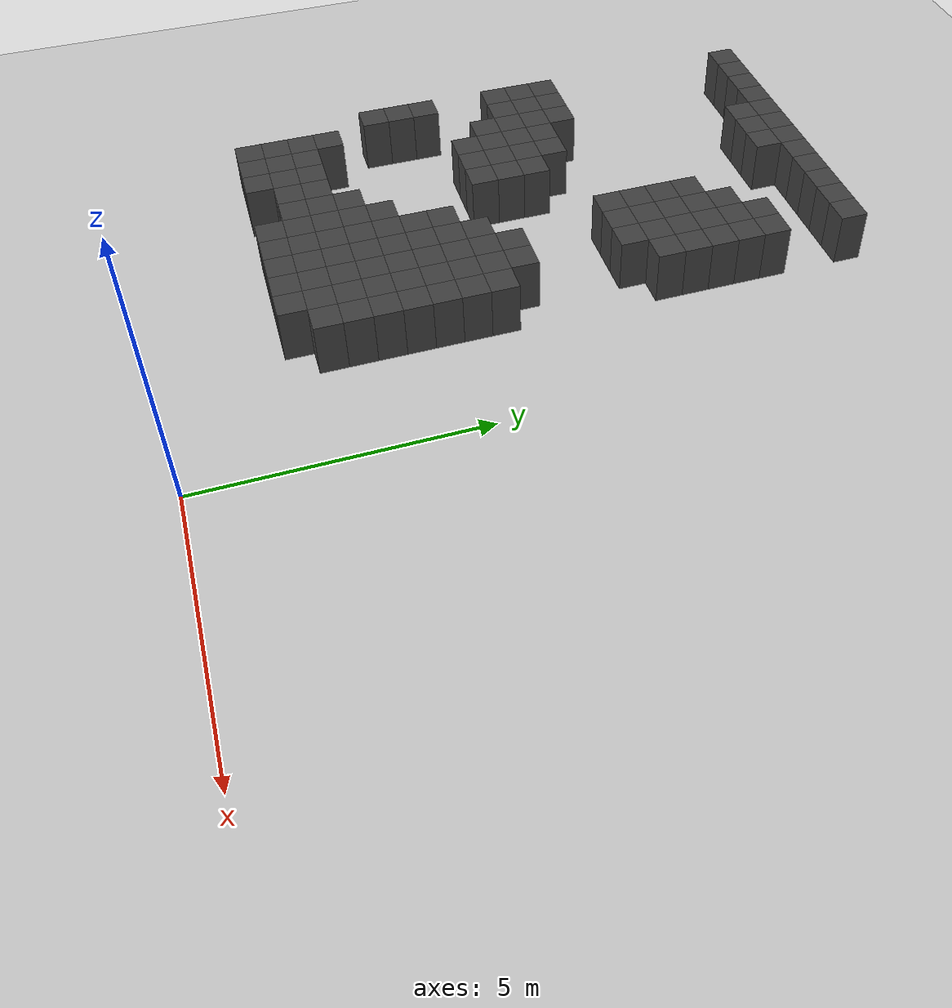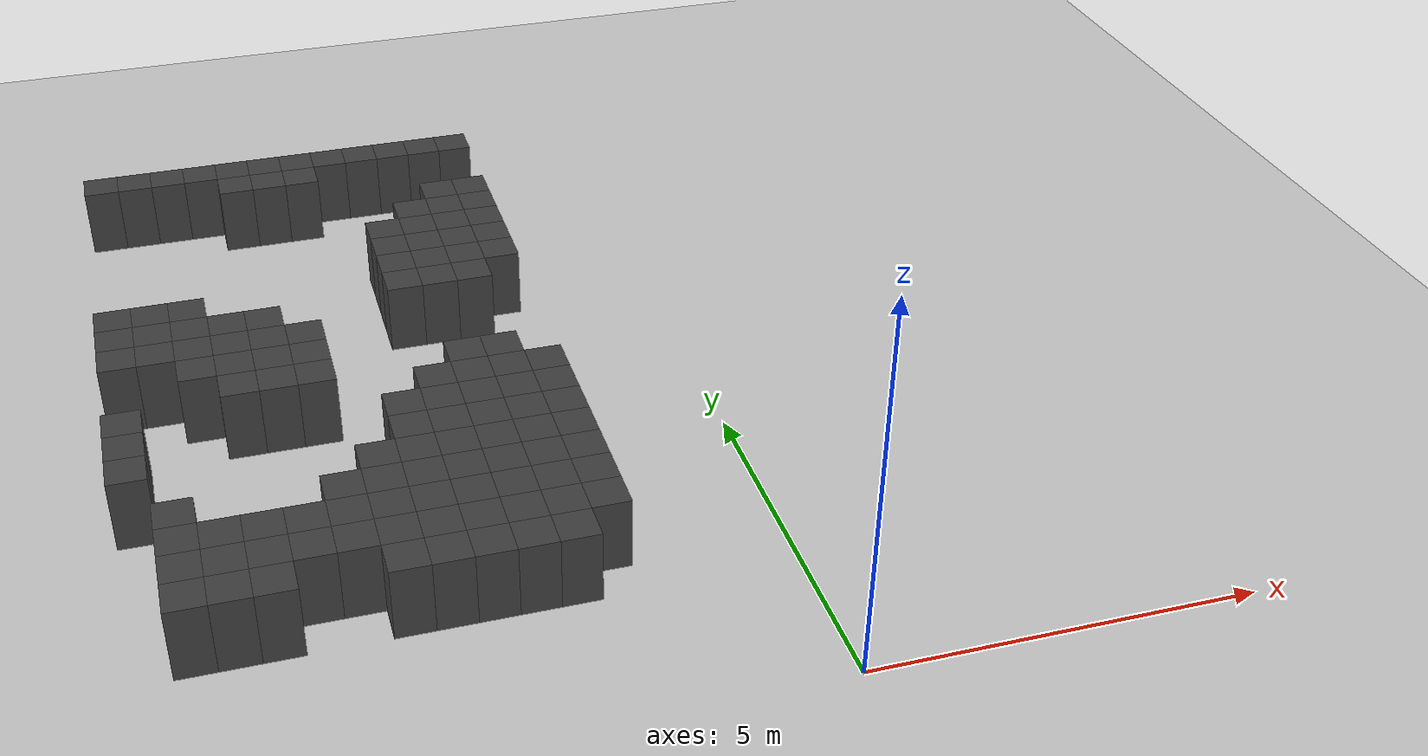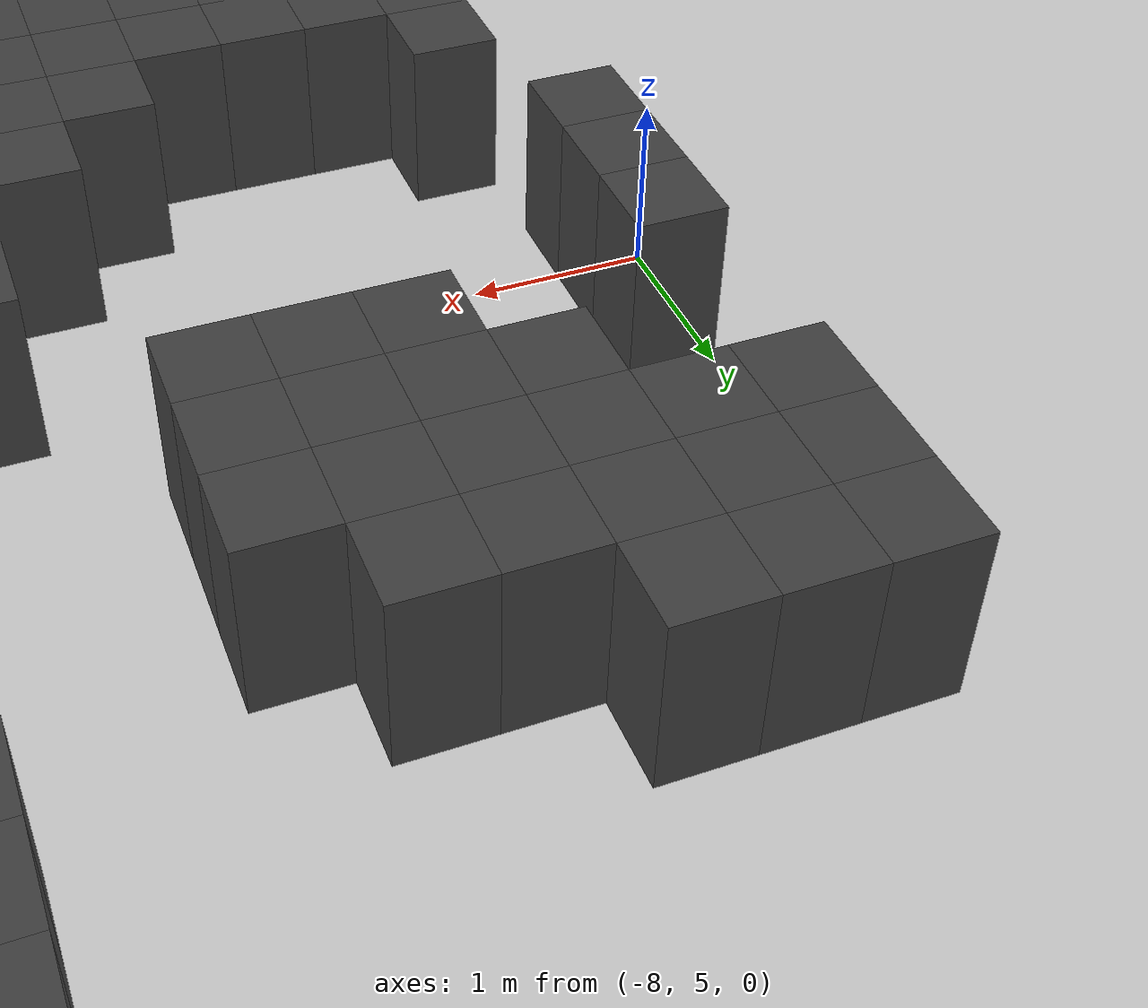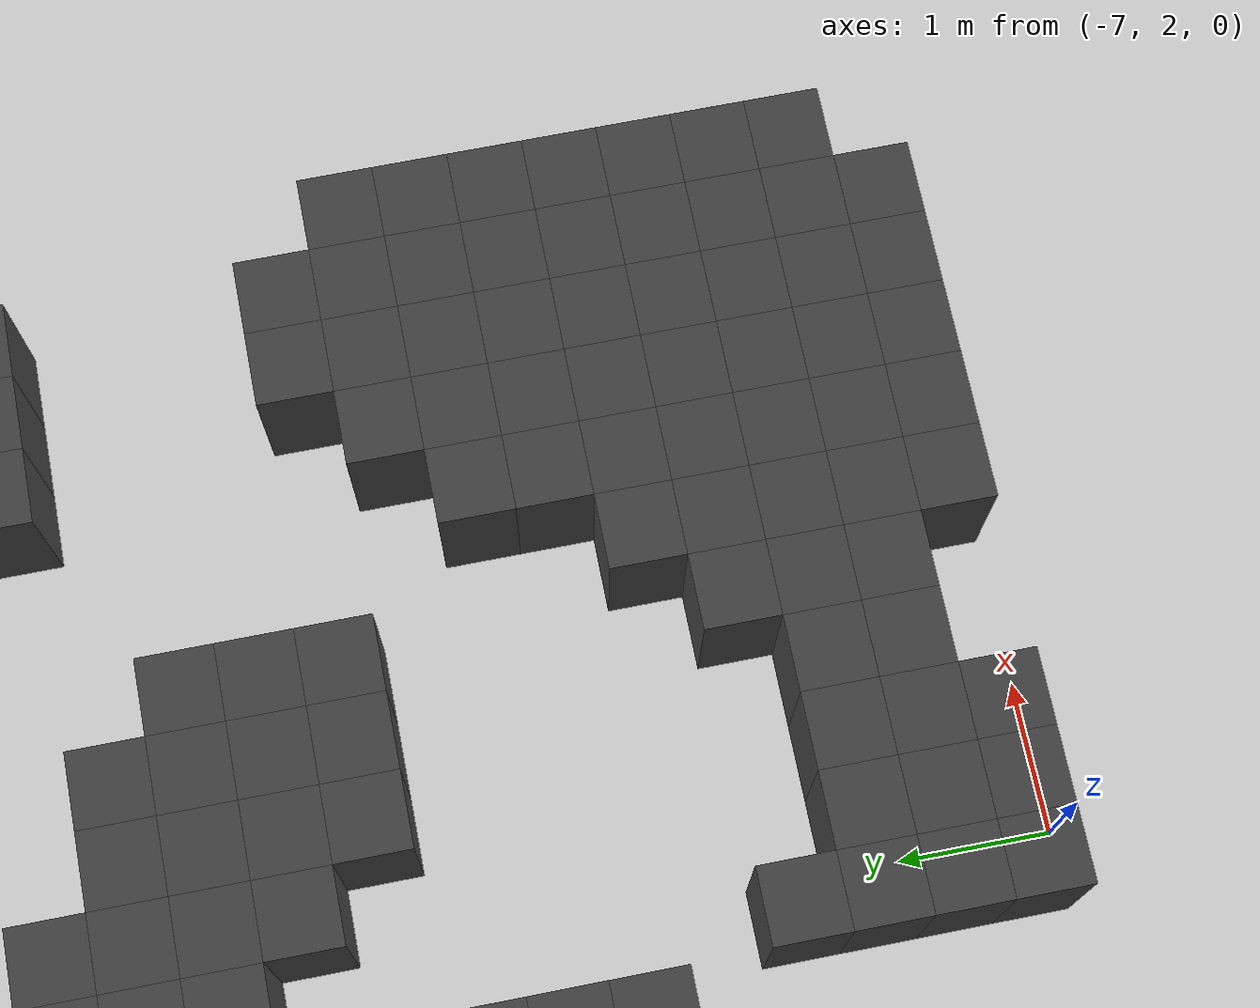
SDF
<sdf version="1.7">
 <world name="map_9705">
  <model name="ground_plane">
   <static>true</static>
   <link name="link">
    <collision name="collision">
     <geometry><plane><normal>0 0 1</normal><size>200 200</size></plane></geometry>
    </collision>
    <visual name="visual">
     <geometry><plane><normal>0 0 1</normal><size>200 200</size></plane></geometry>
     <material><ambient>0.8 0.8 0.8 1</ambient><diffuse>0.8 0.8 0.8 1</diffuse></material>
    </visual>
   </link>
  </model>
  <model name="maze_environment">
   <static>true</static>
   <link name="wall_9">
    <pose>-7.750 12.250 0.500 0 0 0</pose>
    <collision name="col"><geometry><box><size>0.5 0.5 1.0</size></box></geometry></collision>
    <visual name="vis">
     <geometry><box><size>0.5 0.5 1.0</size></box></geometry>
     <material><ambient>0.15 0.15 0.15 1</ambient><diffuse>0.25 0.25 0.25 1</diffuse></material>
    </visual>
   </link>
   <link name="wall_10">
    <pose>-7.250 12.250 0.500 0 0 0</pose>
    <collision name="col"><geometry><box><size>0.5 0.5 1.0</size></box></geometry></collision>
    <visual name="vis">
     <geometry><box><size>0.5 0.5 1.0</size></box></geometry>
     <material><ambient>0.15 0.15 0.15 1</ambient><diffuse>0.25 0.25 0.25 1</diffuse></material>
    </visual>
   </link>
   <link name="wall_11">
    <pose>-6.750 12.250 0.500 0 0 0</pose>
    <collision name="col"><geometry><box><size>0.5 0.5 1.0</size></box></geometry></collision>
    <visual name="vis">
     <geometry><box><size>0.5 0.5 1.0</size></box></geometry>
     <material><ambient>0.15 0.15 0.15 1</ambient><diffuse>0.25 0.25 0.25 1</diffuse></material>
    </visual>
   </link>
   <link name="wall_12">
    <pose>-6.250 12.250 0.500 0 0 0</pose>
    <collision name="col"><geometry><box><size>0.5 0.5 1.0</size></box></geometry></collision>
    <visual name="vis">
     <geometry><box><size>0.5 0.5 1.0</size></box></geometry>
     <material><ambient>0.15 0.15 0.15 1</ambient><diffuse>0.25 0.25 0.25 1</diffuse></material>
    </visual>
   </link>
   <link name="wall_13">
    <pose>-5.750 12.250 0.500 0 0 0</pose>
    <collision name="col"><geometry><box><size>0.5 0.5 1.0</size></box></geometry></collision>
    <visual name="vis">
     <geometry><box><size>0.5 0.5 1.0</size></box></geometry>
     <material><ambient>0.15 0.15 0.15 1</ambient><diffuse>0.25 0.25 0.25 1</diffuse></material>
    </visual>
   </link>
   <link name="wall_14">
    <pose>-5.250 12.250 0.500 0 0 0</pose>
    <collision name="col"><geometry><box><size>0.5 0.5 1.0</size></box></geometry></collision>
    <visual name="vis">
     <geometry><box><size>0.5 0.5 1.0</size></box></geometry>
     <material><ambient>0.15 0.15 0.15 1</ambient><diffuse>0.25 0.25 0.25 1</diffuse></material>
    </visual>
   </link>
   <link name="wall_15">
    <pose>-4.750 12.250 0.500 0 0 0</pose>
    <collision name="col"><geometry><box><size>0.5 0.5 1.0</size></box></geometry></collision>
    <visual name="vis">
     <geometry><box><size>0.5 0.5 1.0</size></box></geometry>
     <material><ambient>0.15 0.15 0.15 1</ambient><diffuse>0.25 0.25 0.25 1</diffuse></material>
    </visual>
   </link>
   <link name="wall_16">
    <pose>-4.250 12.250 0.500 0 0 0</pose>
    <collision name="col"><geometry><box><size>0.5 0.5 1.0</size></box></geometry></collision>
    <visual name="vis">
     <geometry><box><size>0.5 0.5 1.0</size></box></geometry>
     <material><ambient>0.15 0.15 0.15 1</ambient><diffuse>0.25 0.25 0.25 1</diffuse></material>
    </visual>
   </link>
   <link name="wall_17">
    <pose>-3.750 12.250 0.500 0 0 0</pose>
    <collision name="col"><geometry><box><size>0.5 0.5 1.0</size></box></geometry></collision>
    <visual name="vis">
     <geometry><box><size>0.5 0.5 1.0</size></box></geometry>
     <material><ambient>0.15 0.15 0.15 1</ambient><diffuse>0.25 0.25 0.25 1</diffuse></material>
    </visual>
   </link>
   <link name="wall_18">
    <pose>-3.250 12.250 0.500 0 0 0</pose>
    <collision name="col"><geometry><box><size>0.5 0.5 1.0</size></box></geometry></collision>
    <visual name="vis">
     <geometry><box><size>0.5 0.5 1.0</size></box></geometry>
     <material><ambient>0.15 0.15 0.15 1</ambient><diffuse>0.25 0.25 0.25 1</diffuse></material>
    </visual>
   </link>
   <link name="wall_19">
    <pose>-2.750 12.250 0.500 0 0 0</pose>
    <collision name="col"><geometry><box><size>0.5 0.5 1.0</size></box></geometry></collision>
    <visual name="vis">
     <geometry><box><size>0.5 0.5 1.0</size></box></geometry>
     <material><ambient>0.15 0.15 0.15 1</ambient><diffuse>0.25 0.25 0.25 1</diffuse></material>
    </visual>
   </link>
   <link name="wall_20">
    <pose>-2.250 12.250 0.500 0 0 0</pose>
    <collision name="col"><geometry><box><size>0.5 0.5 1.0</size></box></geometry></collision>
    <visual name="vis">
     <geometry><box><size>0.5 0.5 1.0</size></box></geometry>
     <material><ambient>0.15 0.15 0.15 1</ambient><diffuse>0.25 0.25 0.25 1</diffuse></material>
    </visual>
   </link>
   <link name="wall_57">
    <pose>-5.750 11.750 0.500 0 0 0</pose>
    <collision name="col"><geometry><box><size>0.5 0.5 1.0</size></box></geometry></collision>
    <visual name="vis">
     <geometry><box><size>0.5 0.5 1.0</size></box></geometry>
     <material><ambient>0.15 0.15 0.15 1</ambient><diffuse>0.25 0.25 0.25 1</diffuse></material>
    </visual>
   </link>
   <link name="wall_58">
    <pose>-5.250 11.750 0.500 0 0 0</pose>
    <collision name="col"><geometry><box><size>0.5 0.5 1.0</size></box></geometry></collision>
    <visual name="vis">
     <geometry><box><size>0.5 0.5 1.0</size></box></geometry>
     <material><ambient>0.15 0.15 0.15 1</ambient><diffuse>0.25 0.25 0.25 1</diffuse></material>
    </visual>
   </link>
   <link name="wall_59">
    <pose>-4.750 11.750 0.500 0 0 0</pose>
    <collision name="col"><geometry><box><size>0.5 0.5 1.0</size></box></geometry></collision>
    <visual name="vis">
     <geometry><box><size>0.5 0.5 1.0</size></box></geometry>
     <material><ambient>0.15 0.15 0.15 1</ambient><diffuse>0.25 0.25 0.25 1</diffuse></material>
    </visual>
   </link>
   <link name="wall_102">
    <pose>-2.750 10.750 0.500 0 0 0</pose>
    <collision name="col"><geometry><box><size>0.5 0.5 1.0</size></box></geometry></collision>
    <visual name="vis">
     <geometry><box><size>0.5 0.5 1.0</size></box></geometry>
     <material><ambient>0.15 0.15 0.15 1</ambient><diffuse>0.25 0.25 0.25 1</diffuse></material>
    </visual>
   </link>
   <link name="wall_103">
    <pose>-2.250 10.750 0.500 0 0 0</pose>
    <collision name="col"><geometry><box><size>0.5 0.5 1.0</size></box></geometry></collision>
    <visual name="vis">
     <geometry><box><size>0.5 0.5 1.0</size></box></geometry>
     <material><ambient>0.15 0.15 0.15 1</ambient><diffuse>0.25 0.25 0.25 1</diffuse></material>
    </visual>
   </link>
   <link name="wall_118">
    <pose>-3.250 10.250 0.500 0 0 0</pose>
    <collision name="col"><geometry><box><size>0.5 0.5 1.0</size></box></geometry></collision>
    <visual name="vis">
     <geometry><box><size>0.5 0.5 1.0</size></box></geometry>
     <material><ambient>0.15 0.15 0.15 1</ambient><diffuse>0.25 0.25 0.25 1</diffuse></material>
    </visual>
   </link>
   <link name="wall_119">
    <pose>-2.750 10.250 0.500 0 0 0</pose>
    <collision name="col"><geometry><box><size>0.5 0.5 1.0</size></box></geometry></collision>
    <visual name="vis">
     <geometry><box><size>0.5 0.5 1.0</size></box></geometry>
     <material><ambient>0.15 0.15 0.15 1</ambient><diffuse>0.25 0.25 0.25 1</diffuse></material>
    </visual>
   </link>
   <link name="wall_120">
    <pose>-2.250 10.250 0.500 0 0 0</pose>
    <collision name="col"><geometry><box><size>0.5 0.5 1.0</size></box></geometry></collision>
    <visual name="vis">
     <geometry><box><size>0.5 0.5 1.0</size></box></geometry>
     <material><ambient>0.15 0.15 0.15 1</ambient><diffuse>0.25 0.25 0.25 1</diffuse></material>
    </visual>
   </link>
   <link name="wall_137">
    <pose>-3.750 9.750 0.500 0 0 0</pose>
    <collision name="col"><geometry><box><size>0.5 0.5 1.0</size></box></geometry></collision>
    <visual name="vis">
     <geometry><box><size>0.5 0.5 1.0</size></box></geometry>
     <material><ambient>0.15 0.15 0.15 1</ambient><diffuse>0.25 0.25 0.25 1</diffuse></material>
    </visual>
   </link>
   <link name="wall_138">
    <pose>-3.250 9.750 0.500 0 0 0</pose>
    <collision name="col"><geometry><box><size>0.5 0.5 1.0</size></box></geometry></collision>
    <visual name="vis">
     <geometry><box><size>0.5 0.5 1.0</size></box></geometry>
     <material><ambient>0.15 0.15 0.15 1</ambient><diffuse>0.25 0.25 0.25 1</diffuse></material>
    </visual>
   </link>
   <link name="wall_139">
    <pose>-2.750 9.750 0.500 0 0 0</pose>
    <collision name="col"><geometry><box><size>0.5 0.5 1.0</size></box></geometry></collision>
    <visual name="vis">
     <geometry><box><size>0.5 0.5 1.0</size></box></geometry>
     <material><ambient>0.15 0.15 0.15 1</ambient><diffuse>0.25 0.25 0.25 1</diffuse></material>
    </visual>
   </link>
   <link name="wall_140">
    <pose>-2.250 9.750 0.500 0 0 0</pose>
    <collision name="col"><geometry><box><size>0.5 0.5 1.0</size></box></geometry></collision>
    <visual name="vis">
     <geometry><box><size>0.5 0.5 1.0</size></box></geometry>
     <material><ambient>0.15 0.15 0.15 1</ambient><diffuse>0.25 0.25 0.25 1</diffuse></material>
    </visual>
   </link>
   <link name="wall_160">
    <pose>-3.750 9.250 0.500 0 0 0</pose>
    <collision name="col"><geometry><box><size>0.5 0.5 1.0</size></box></geometry></collision>
    <visual name="vis">
     <geometry><box><size>0.5 0.5 1.0</size></box></geometry>
     <material><ambient>0.15 0.15 0.15 1</ambient><diffuse>0.25 0.25 0.25 1</diffuse></material>
    </visual>
   </link>
   <link name="wall_161">
    <pose>-3.250 9.250 0.500 0 0 0</pose>
    <collision name="col"><geometry><box><size>0.5 0.5 1.0</size></box></geometry></collision>
    <visual name="vis">
     <geometry><box><size>0.5 0.5 1.0</size></box></geometry>
     <material><ambient>0.15 0.15 0.15 1</ambient><diffuse>0.25 0.25 0.25 1</diffuse></material>
    </visual>
   </link>
   <link name="wall_162">
    <pose>-2.750 9.250 0.500 0 0 0</pose>
    <collision name="col"><geometry><box><size>0.5 0.5 1.0</size></box></geometry></collision>
    <visual name="vis">
     <geometry><box><size>0.5 0.5 1.0</size></box></geometry>
     <material><ambient>0.15 0.15 0.15 1</ambient><diffuse>0.25 0.25 0.25 1</diffuse></material>
    </visual>
   </link>
   <link name="wall_163">
    <pose>-2.250 9.250 0.500 0 0 0</pose>
    <collision name="col"><geometry><box><size>0.5 0.5 1.0</size></box></geometry></collision>
    <visual name="vis">
     <geometry><box><size>0.5 0.5 1.0</size></box></geometry>
     <material><ambient>0.15 0.15 0.15 1</ambient><diffuse>0.25 0.25 0.25 1</diffuse></material>
    </visual>
   </link>
   <link name="wall_183">
    <pose>-3.750 8.750 0.500 0 0 0</pose>
    <collision name="col"><geometry><box><size>0.5 0.5 1.0</size></box></geometry></collision>
    <visual name="vis">
     <geometry><box><size>0.5 0.5 1.0</size></box></geometry>
     <material><ambient>0.15 0.15 0.15 1</ambient><diffuse>0.25 0.25 0.25 1</diffuse></material>
    </visual>
   </link>
   <link name="wall_184">
    <pose>-3.250 8.750 0.500 0 0 0</pose>
    <collision name="col"><geometry><box><size>0.5 0.5 1.0</size></box></geometry></collision>
    <visual name="vis">
     <geometry><box><size>0.5 0.5 1.0</size></box></geometry>
     <material><ambient>0.15 0.15 0.15 1</ambient><diffuse>0.25 0.25 0.25 1</diffuse></material>
    </visual>
   </link>
   <link name="wall_185">
    <pose>-2.750 8.750 0.500 0 0 0</pose>
    <collision name="col"><geometry><box><size>0.5 0.5 1.0</size></box></geometry></collision>
    <visual name="vis">
     <geometry><box><size>0.5 0.5 1.0</size></box></geometry>
     <material><ambient>0.15 0.15 0.15 1</ambient><diffuse>0.25 0.25 0.25 1</diffuse></material>
    </visual>
   </link>
   <link name="wall_186">
    <pose>-2.250 8.750 0.500 0 0 0</pose>
    <collision name="col"><geometry><box><size>0.5 0.5 1.0</size></box></geometry></collision>
    <visual name="vis">
     <geometry><box><size>0.5 0.5 1.0</size></box></geometry>
     <material><ambient>0.15 0.15 0.15 1</ambient><diffuse>0.25 0.25 0.25 1</diffuse></material>
    </visual>
   </link>
   <link name="wall_199">
    <pose>-7.750 8.250 0.500 0 0 0</pose>
    <collision name="col"><geometry><box><size>0.5 0.5 1.0</size></box></geometry></collision>
    <visual name="vis">
     <geometry><box><size>0.5 0.5 1.0</size></box></geometry>
     <material><ambient>0.15 0.15 0.15 1</ambient><diffuse>0.25 0.25 0.25 1</diffuse></material>
    </visual>
   </link>
   <link name="wall_200">
    <pose>-7.250 8.250 0.500 0 0 0</pose>
    <collision name="col"><geometry><box><size>0.5 0.5 1.0</size></box></geometry></collision>
    <visual name="vis">
     <geometry><box><size>0.5 0.5 1.0</size></box></geometry>
     <material><ambient>0.15 0.15 0.15 1</ambient><diffuse>0.25 0.25 0.25 1</diffuse></material>
    </visual>
   </link>
   <link name="wall_201">
    <pose>-6.750 8.250 0.500 0 0 0</pose>
    <collision name="col"><geometry><box><size>0.5 0.5 1.0</size></box></geometry></collision>
    <visual name="vis">
     <geometry><box><size>0.5 0.5 1.0</size></box></geometry>
     <material><ambient>0.15 0.15 0.15 1</ambient><diffuse>0.25 0.25 0.25 1</diffuse></material>
    </visual>
   </link>
   <link name="wall_202">
    <pose>-3.750 8.250 0.500 0 0 0</pose>
    <collision name="col"><geometry><box><size>0.5 0.5 1.0</size></box></geometry></collision>
    <visual name="vis">
     <geometry><box><size>0.5 0.5 1.0</size></box></geometry>
     <material><ambient>0.15 0.15 0.15 1</ambient><diffuse>0.25 0.25 0.25 1</diffuse></material>
    </visual>
   </link>
   <link name="wall_203">
    <pose>-3.250 8.250 0.500 0 0 0</pose>
    <collision name="col"><geometry><box><size>0.5 0.5 1.0</size></box></geometry></collision>
    <visual name="vis">
     <geometry><box><size>0.5 0.5 1.0</size></box></geometry>
     <material><ambient>0.15 0.15 0.15 1</ambient><diffuse>0.25 0.25 0.25 1</diffuse></material>
    </visual>
   </link>
   <link name="wall_204">
    <pose>-2.750 8.250 0.500 0 0 0</pose>
    <collision name="col"><geometry><box><size>0.5 0.5 1.0</size></box></geometry></collision>
    <visual name="vis">
     <geometry><box><size>0.5 0.5 1.0</size></box></geometry>
     <material><ambient>0.15 0.15 0.15 1</ambient><diffuse>0.25 0.25 0.25 1</diffuse></material>
    </visual>
   </link>
   <link name="wall_212">
    <pose>-7.750 7.750 0.500 0 0 0</pose>
    <collision name="col"><geometry><box><size>0.5 0.5 1.0</size></box></geometry></collision>
    <visual name="vis">
     <geometry><box><size>0.5 0.5 1.0</size></box></geometry>
     <material><ambient>0.15 0.15 0.15 1</ambient><diffuse>0.25 0.25 0.25 1</diffuse></material>
    </visual>
   </link>
   <link name="wall_213">
    <pose>-7.250 7.750 0.500 0 0 0</pose>
    <collision name="col"><geometry><box><size>0.5 0.5 1.0</size></box></geometry></collision>
    <visual name="vis">
     <geometry><box><size>0.5 0.5 1.0</size></box></geometry>
     <material><ambient>0.15 0.15 0.15 1</ambient><diffuse>0.25 0.25 0.25 1</diffuse></material>
    </visual>
   </link>
   <link name="wall_214">
    <pose>-6.750 7.750 0.500 0 0 0</pose>
    <collision name="col"><geometry><box><size>0.5 0.5 1.0</size></box></geometry></collision>
    <visual name="vis">
     <geometry><box><size>0.5 0.5 1.0</size></box></geometry>
     <material><ambient>0.15 0.15 0.15 1</ambient><diffuse>0.25 0.25 0.25 1</diffuse></material>
    </visual>
   </link>
   <link name="wall_215">
    <pose>-6.250 7.750 0.500 0 0 0</pose>
    <collision name="col"><geometry><box><size>0.5 0.5 1.0</size></box></geometry></collision>
    <visual name="vis">
     <geometry><box><size>0.5 0.5 1.0</size></box></geometry>
     <material><ambient>0.15 0.15 0.15 1</ambient><diffuse>0.25 0.25 0.25 1</diffuse></material>
    </visual>
   </link>
   <link name="wall_216">
    <pose>-5.750 7.750 0.500 0 0 0</pose>
    <collision name="col"><geometry><box><size>0.5 0.5 1.0</size></box></geometry></collision>
    <visual name="vis">
     <geometry><box><size>0.5 0.5 1.0</size></box></geometry>
     <material><ambient>0.15 0.15 0.15 1</ambient><diffuse>0.25 0.25 0.25 1</diffuse></material>
    </visual>
   </link>
   <link name="wall_223">
    <pose>-7.750 7.250 0.500 0 0 0</pose>
    <collision name="col"><geometry><box><size>0.5 0.5 1.0</size></box></geometry></collision>
    <visual name="vis">
     <geometry><box><size>0.5 0.5 1.0</size></box></geometry>
     <material><ambient>0.15 0.15 0.15 1</ambient><diffuse>0.25 0.25 0.25 1</diffuse></material>
    </visual>
   </link>
   <link name="wall_224">
    <pose>-7.250 7.250 0.500 0 0 0</pose>
    <collision name="col"><geometry><box><size>0.5 0.5 1.0</size></box></geometry></collision>
    <visual name="vis">
     <geometry><box><size>0.5 0.5 1.0</size></box></geometry>
     <material><ambient>0.15 0.15 0.15 1</ambient><diffuse>0.25 0.25 0.25 1</diffuse></material>
    </visual>
   </link>
   <link name="wall_225">
    <pose>-6.750 7.250 0.500 0 0 0</pose>
    <collision name="col"><geometry><box><size>0.5 0.5 1.0</size></box></geometry></collision>
    <visual name="vis">
     <geometry><box><size>0.5 0.5 1.0</size></box></geometry>
     <material><ambient>0.15 0.15 0.15 1</ambient><diffuse>0.25 0.25 0.25 1</diffuse></material>
    </visual>
   </link>
   <link name="wall_226">
    <pose>-6.250 7.250 0.500 0 0 0</pose>
    <collision name="col"><geometry><box><size>0.5 0.5 1.0</size></box></geometry></collision>
    <visual name="vis">
     <geometry><box><size>0.5 0.5 1.0</size></box></geometry>
     <material><ambient>0.15 0.15 0.15 1</ambient><diffuse>0.25 0.25 0.25 1</diffuse></material>
    </visual>
   </link>
   <link name="wall_227">
    <pose>-5.750 7.250 0.500 0 0 0</pose>
    <collision name="col"><geometry><box><size>0.5 0.5 1.0</size></box></geometry></collision>
    <visual name="vis">
     <geometry><box><size>0.5 0.5 1.0</size></box></geometry>
     <material><ambient>0.15 0.15 0.15 1</ambient><diffuse>0.25 0.25 0.25 1</diffuse></material>
    </visual>
   </link>
   <link name="wall_228">
    <pose>-5.250 7.250 0.500 0 0 0</pose>
    <collision name="col"><geometry><box><size>0.5 0.5 1.0</size></box></geometry></collision>
    <visual name="vis">
     <geometry><box><size>0.5 0.5 1.0</size></box></geometry>
     <material><ambient>0.15 0.15 0.15 1</ambient><diffuse>0.25 0.25 0.25 1</diffuse></material>
    </visual>
   </link>
   <link name="wall_237">
    <pose>-6.750 6.750 0.500 0 0 0</pose>
    <collision name="col"><geometry><box><size>0.5 0.5 1.0</size></box></geometry></collision>
    <visual name="vis">
     <geometry><box><size>0.5 0.5 1.0</size></box></geometry>
     <material><ambient>0.15 0.15 0.15 1</ambient><diffuse>0.25 0.25 0.25 1</diffuse></material>
    </visual>
   </link>
   <link name="wall_238">
    <pose>-6.250 6.750 0.500 0 0 0</pose>
    <collision name="col"><geometry><box><size>0.5 0.5 1.0</size></box></geometry></collision>
    <visual name="vis">
     <geometry><box><size>0.5 0.5 1.0</size></box></geometry>
     <material><ambient>0.15 0.15 0.15 1</ambient><diffuse>0.25 0.25 0.25 1</diffuse></material>
    </visual>
   </link>
   <link name="wall_239">
    <pose>-5.750 6.750 0.500 0 0 0</pose>
    <collision name="col"><geometry><box><size>0.5 0.5 1.0</size></box></geometry></collision>
    <visual name="vis">
     <geometry><box><size>0.5 0.5 1.0</size></box></geometry>
     <material><ambient>0.15 0.15 0.15 1</ambient><diffuse>0.25 0.25 0.25 1</diffuse></material>
    </visual>
   </link>
   <link name="wall_240">
    <pose>-5.250 6.750 0.500 0 0 0</pose>
    <collision name="col"><geometry><box><size>0.5 0.5 1.0</size></box></geometry></collision>
    <visual name="vis">
     <geometry><box><size>0.5 0.5 1.0</size></box></geometry>
     <material><ambient>0.15 0.15 0.15 1</ambient><diffuse>0.25 0.25 0.25 1</diffuse></material>
    </visual>
   </link>
   <link name="wall_261">
    <pose>-6.250 6.250 0.500 0 0 0</pose>
    <collision name="col"><geometry><box><size>0.5 0.5 1.0</size></box></geometry></collision>
    <visual name="vis">
     <geometry><box><size>0.5 0.5 1.0</size></box></geometry>
     <material><ambient>0.15 0.15 0.15 1</ambient><diffuse>0.25 0.25 0.25 1</diffuse></material>
    </visual>
   </link>
   <link name="wall_262">
    <pose>-5.750 6.250 0.500 0 0 0</pose>
    <collision name="col"><geometry><box><size>0.5 0.5 1.0</size></box></geometry></collision>
    <visual name="vis">
     <geometry><box><size>0.5 0.5 1.0</size></box></geometry>
     <material><ambient>0.15 0.15 0.15 1</ambient><diffuse>0.25 0.25 0.25 1</diffuse></material>
    </visual>
   </link>
   <link name="wall_263">
    <pose>-5.250 6.250 0.500 0 0 0</pose>
    <collision name="col"><geometry><box><size>0.5 0.5 1.0</size></box></geometry></collision>
    <visual name="vis">
     <geometry><box><size>0.5 0.5 1.0</size></box></geometry>
     <material><ambient>0.15 0.15 0.15 1</ambient><diffuse>0.25 0.25 0.25 1</diffuse></material>
    </visual>
   </link>
   <link name="wall_264">
    <pose>-3.250 6.250 0.500 0 0 0</pose>
    <collision name="col"><geometry><box><size>0.5 0.5 1.0</size></box></geometry></collision>
    <visual name="vis">
     <geometry><box><size>0.5 0.5 1.0</size></box></geometry>
     <material><ambient>0.15 0.15 0.15 1</ambient><diffuse>0.25 0.25 0.25 1</diffuse></material>
    </visual>
   </link>
   <link name="wall_265">
    <pose>-2.750 6.250 0.500 0 0 0</pose>
    <collision name="col"><geometry><box><size>0.5 0.5 1.0</size></box></geometry></collision>
    <visual name="vis">
     <geometry><box><size>0.5 0.5 1.0</size></box></geometry>
     <material><ambient>0.15 0.15 0.15 1</ambient><diffuse>0.25 0.25 0.25 1</diffuse></material>
    </visual>
   </link>
   <link name="wall_291">
    <pose>-7.750 5.750 0.500 0 0 0</pose>
    <collision name="col"><geometry><box><size>0.5 0.5 1.0</size></box></geometry></collision>
    <visual name="vis">
     <geometry><box><size>0.5 0.5 1.0</size></box></geometry>
     <material><ambient>0.15 0.15 0.15 1</ambient><diffuse>0.25 0.25 0.25 1</diffuse></material>
    </visual>
   </link>
   <link name="wall_292">
    <pose>-3.750 5.750 0.500 0 0 0</pose>
    <collision name="col"><geometry><box><size>0.5 0.5 1.0</size></box></geometry></collision>
    <visual name="vis">
     <geometry><box><size>0.5 0.5 1.0</size></box></geometry>
     <material><ambient>0.15 0.15 0.15 1</ambient><diffuse>0.25 0.25 0.25 1</diffuse></material>
    </visual>
   </link>
   <link name="wall_293">
    <pose>-3.250 5.750 0.500 0 0 0</pose>
    <collision name="col"><geometry><box><size>0.5 0.5 1.0</size></box></geometry></collision>
    <visual name="vis">
     <geometry><box><size>0.5 0.5 1.0</size></box></geometry>
     <material><ambient>0.15 0.15 0.15 1</ambient><diffuse>0.25 0.25 0.25 1</diffuse></material>
    </visual>
   </link>
   <link name="wall_294">
    <pose>-2.750 5.750 0.500 0 0 0</pose>
    <collision name="col"><geometry><box><size>0.5 0.5 1.0</size></box></geometry></collision>
    <visual name="vis">
     <geometry><box><size>0.5 0.5 1.0</size></box></geometry>
     <material><ambient>0.15 0.15 0.15 1</ambient><diffuse>0.25 0.25 0.25 1</diffuse></material>
    </visual>
   </link>
   <link name="wall_295">
    <pose>-2.250 5.750 0.500 0 0 0</pose>
    <collision name="col"><geometry><box><size>0.5 0.5 1.0</size></box></geometry></collision>
    <visual name="vis">
     <geometry><box><size>0.5 0.5 1.0</size></box></geometry>
     <material><ambient>0.15 0.15 0.15 1</ambient><diffuse>0.25 0.25 0.25 1</diffuse></material>
    </visual>
   </link>
   <link name="wall_323">
    <pose>-7.750 5.250 0.500 0 0 0</pose>
    <collision name="col"><geometry><box><size>0.5 0.5 1.0</size></box></geometry></collision>
    <visual name="vis">
     <geometry><box><size>0.5 0.5 1.0</size></box></geometry>
     <material><ambient>0.15 0.15 0.15 1</ambient><diffuse>0.25 0.25 0.25 1</diffuse></material>
    </visual>
   </link>
   <link name="wall_324">
    <pose>-4.250 5.250 0.500 0 0 0</pose>
    <collision name="col"><geometry><box><size>0.5 0.5 1.0</size></box></geometry></collision>
    <visual name="vis">
     <geometry><box><size>0.5 0.5 1.0</size></box></geometry>
     <material><ambient>0.15 0.15 0.15 1</ambient><diffuse>0.25 0.25 0.25 1</diffuse></material>
    </visual>
   </link>
   <link name="wall_325">
    <pose>-3.750 5.250 0.500 0 0 0</pose>
    <collision name="col"><geometry><box><size>0.5 0.5 1.0</size></box></geometry></collision>
    <visual name="vis">
     <geometry><box><size>0.5 0.5 1.0</size></box></geometry>
     <material><ambient>0.15 0.15 0.15 1</ambient><diffuse>0.25 0.25 0.25 1</diffuse></material>
    </visual>
   </link>
   <link name="wall_326">
    <pose>-3.250 5.250 0.500 0 0 0</pose>
    <collision name="col"><geometry><box><size>0.5 0.5 1.0</size></box></geometry></collision>
    <visual name="vis">
     <geometry><box><size>0.5 0.5 1.0</size></box></geometry>
     <material><ambient>0.15 0.15 0.15 1</ambient><diffuse>0.25 0.25 0.25 1</diffuse></material>
    </visual>
   </link>
   <link name="wall_327">
    <pose>-2.750 5.250 0.500 0 0 0</pose>
    <collision name="col"><geometry><box><size>0.5 0.5 1.0</size></box></geometry></collision>
    <visual name="vis">
     <geometry><box><size>0.5 0.5 1.0</size></box></geometry>
     <material><ambient>0.15 0.15 0.15 1</ambient><diffuse>0.25 0.25 0.25 1</diffuse></material>
    </visual>
   </link>
   <link name="wall_328">
    <pose>-2.250 5.250 0.500 0 0 0</pose>
    <collision name="col"><geometry><box><size>0.5 0.5 1.0</size></box></geometry></collision>
    <visual name="vis">
     <geometry><box><size>0.5 0.5 1.0</size></box></geometry>
     <material><ambient>0.15 0.15 0.15 1</ambient><diffuse>0.25 0.25 0.25 1</diffuse></material>
    </visual>
   </link>
   <link name="wall_353">
    <pose>-7.750 4.750 0.500 0 0 0</pose>
    <collision name="col"><geometry><box><size>0.5 0.5 1.0</size></box></geometry></collision>
    <visual name="vis">
     <geometry><box><size>0.5 0.5 1.0</size></box></geometry>
     <material><ambient>0.15 0.15 0.15 1</ambient><diffuse>0.25 0.25 0.25 1</diffuse></material>
    </visual>
   </link>
   <link name="wall_354">
    <pose>-4.250 4.750 0.500 0 0 0</pose>
    <collision name="col"><geometry><box><size>0.5 0.5 1.0</size></box></geometry></collision>
    <visual name="vis">
     <geometry><box><size>0.5 0.5 1.0</size></box></geometry>
     <material><ambient>0.15 0.15 0.15 1</ambient><diffuse>0.25 0.25 0.25 1</diffuse></material>
    </visual>
   </link>
   <link name="wall_355">
    <pose>-3.750 4.750 0.500 0 0 0</pose>
    <collision name="col"><geometry><box><size>0.5 0.5 1.0</size></box></geometry></collision>
    <visual name="vis">
     <geometry><box><size>0.5 0.5 1.0</size></box></geometry>
     <material><ambient>0.15 0.15 0.15 1</ambient><diffuse>0.25 0.25 0.25 1</diffuse></material>
    </visual>
   </link>
   <link name="wall_356">
    <pose>-3.250 4.750 0.500 0 0 0</pose>
    <collision name="col"><geometry><box><size>0.5 0.5 1.0</size></box></geometry></collision>
    <visual name="vis">
     <geometry><box><size>0.5 0.5 1.0</size></box></geometry>
     <material><ambient>0.15 0.15 0.15 1</ambient><diffuse>0.25 0.25 0.25 1</diffuse></material>
    </visual>
   </link>
   <link name="wall_357">
    <pose>-2.750 4.750 0.500 0 0 0</pose>
    <collision name="col"><geometry><box><size>0.5 0.5 1.0</size></box></geometry></collision>
    <visual name="vis">
     <geometry><box><size>0.5 0.5 1.0</size></box></geometry>
     <material><ambient>0.15 0.15 0.15 1</ambient><diffuse>0.25 0.25 0.25 1</diffuse></material>
    </visual>
   </link>
   <link name="wall_358">
    <pose>-2.250 4.750 0.500 0 0 0</pose>
    <collision name="col"><geometry><box><size>0.5 0.5 1.0</size></box></geometry></collision>
    <visual name="vis">
     <geometry><box><size>0.5 0.5 1.0</size></box></geometry>
     <material><ambient>0.15 0.15 0.15 1</ambient><diffuse>0.25 0.25 0.25 1</diffuse></material>
    </visual>
   </link>
   <link name="wall_384">
    <pose>-4.750 4.250 0.500 0 0 0</pose>
    <collision name="col"><geometry><box><size>0.5 0.5 1.0</size></box></geometry></collision>
    <visual name="vis">
     <geometry><box><size>0.5 0.5 1.0</size></box></geometry>
     <material><ambient>0.15 0.15 0.15 1</ambient><diffuse>0.25 0.25 0.25 1</diffuse></material>
    </visual>
   </link>
   <link name="wall_385">
    <pose>-4.250 4.250 0.500 0 0 0</pose>
    <collision name="col"><geometry><box><size>0.5 0.5 1.0</size></box></geometry></collision>
    <visual name="vis">
     <geometry><box><size>0.5 0.5 1.0</size></box></geometry>
     <material><ambient>0.15 0.15 0.15 1</ambient><diffuse>0.25 0.25 0.25 1</diffuse></material>
    </visual>
   </link>
   <link name="wall_386">
    <pose>-3.750 4.250 0.500 0 0 0</pose>
    <collision name="col"><geometry><box><size>0.5 0.5 1.0</size></box></geometry></collision>
    <visual name="vis">
     <geometry><box><size>0.5 0.5 1.0</size></box></geometry>
     <material><ambient>0.15 0.15 0.15 1</ambient><diffuse>0.25 0.25 0.25 1</diffuse></material>
    </visual>
   </link>
   <link name="wall_387">
    <pose>-3.250 4.250 0.500 0 0 0</pose>
    <collision name="col"><geometry><box><size>0.5 0.5 1.0</size></box></geometry></collision>
    <visual name="vis">
     <geometry><box><size>0.5 0.5 1.0</size></box></geometry>
     <material><ambient>0.15 0.15 0.15 1</ambient><diffuse>0.25 0.25 0.25 1</diffuse></material>
    </visual>
   </link>
   <link name="wall_388">
    <pose>-2.750 4.250 0.500 0 0 0</pose>
    <collision name="col"><geometry><box><size>0.5 0.5 1.0</size></box></geometry></collision>
    <visual name="vis">
     <geometry><box><size>0.5 0.5 1.0</size></box></geometry>
     <material><ambient>0.15 0.15 0.15 1</ambient><diffuse>0.25 0.25 0.25 1</diffuse></material>
    </visual>
   </link>
   <link name="wall_389">
    <pose>-2.250 4.250 0.500 0 0 0</pose>
    <collision name="col"><geometry><box><size>0.5 0.5 1.0</size></box></geometry></collision>
    <visual name="vis">
     <geometry><box><size>0.5 0.5 1.0</size></box></geometry>
     <material><ambient>0.15 0.15 0.15 1</ambient><diffuse>0.25 0.25 0.25 1</diffuse></material>
    </visual>
   </link>
   <link name="wall_413">
    <pose>-7.250 3.750 0.500 0 0 0</pose>
    <collision name="col"><geometry><box><size>0.5 0.5 1.0</size></box></geometry></collision>
    <visual name="vis">
     <geometry><box><size>0.5 0.5 1.0</size></box></geometry>
     <material><ambient>0.15 0.15 0.15 1</ambient><diffuse>0.25 0.25 0.25 1</diffuse></material>
    </visual>
   </link>
   <link name="wall_414">
    <pose>-5.250 3.750 0.500 0 0 0</pose>
    <collision name="col"><geometry><box><size>0.5 0.5 1.0</size></box></geometry></collision>
    <visual name="vis">
     <geometry><box><size>0.5 0.5 1.0</size></box></geometry>
     <material><ambient>0.15 0.15 0.15 1</ambient><diffuse>0.25 0.25 0.25 1</diffuse></material>
    </visual>
   </link>
   <link name="wall_415">
    <pose>-4.750 3.750 0.500 0 0 0</pose>
    <collision name="col"><geometry><box><size>0.5 0.5 1.0</size></box></geometry></collision>
    <visual name="vis">
     <geometry><box><size>0.5 0.5 1.0</size></box></geometry>
     <material><ambient>0.15 0.15 0.15 1</ambient><diffuse>0.25 0.25 0.25 1</diffuse></material>
    </visual>
   </link>
   <link name="wall_416">
    <pose>-4.250 3.750 0.500 0 0 0</pose>
    <collision name="col"><geometry><box><size>0.5 0.5 1.0</size></box></geometry></collision>
    <visual name="vis">
     <geometry><box><size>0.5 0.5 1.0</size></box></geometry>
     <material><ambient>0.15 0.15 0.15 1</ambient><diffuse>0.25 0.25 0.25 1</diffuse></material>
    </visual>
   </link>
   <link name="wall_417">
    <pose>-3.750 3.750 0.500 0 0 0</pose>
    <collision name="col"><geometry><box><size>0.5 0.5 1.0</size></box></geometry></collision>
    <visual name="vis">
     <geometry><box><size>0.5 0.5 1.0</size></box></geometry>
     <material><ambient>0.15 0.15 0.15 1</ambient><diffuse>0.25 0.25 0.25 1</diffuse></material>
    </visual>
   </link>
   <link name="wall_418">
    <pose>-3.250 3.750 0.500 0 0 0</pose>
    <collision name="col"><geometry><box><size>0.5 0.5 1.0</size></box></geometry></collision>
    <visual name="vis">
     <geometry><box><size>0.5 0.5 1.0</size></box></geometry>
     <material><ambient>0.15 0.15 0.15 1</ambient><diffuse>0.25 0.25 0.25 1</diffuse></material>
    </visual>
   </link>
   <link name="wall_419">
    <pose>-2.750 3.750 0.500 0 0 0</pose>
    <collision name="col"><geometry><box><size>0.5 0.5 1.0</size></box></geometry></collision>
    <visual name="vis">
     <geometry><box><size>0.5 0.5 1.0</size></box></geometry>
     <material><ambient>0.15 0.15 0.15 1</ambient><diffuse>0.25 0.25 0.25 1</diffuse></material>
    </visual>
   </link>
   <link name="wall_420">
    <pose>-2.250 3.750 0.500 0 0 0</pose>
    <collision name="col"><geometry><box><size>0.5 0.5 1.0</size></box></geometry></collision>
    <visual name="vis">
     <geometry><box><size>0.5 0.5 1.0</size></box></geometry>
     <material><ambient>0.15 0.15 0.15 1</ambient><diffuse>0.25 0.25 0.25 1</diffuse></material>
    </visual>
   </link>
   <link name="wall_441">
    <pose>-7.250 3.250 0.500 0 0 0</pose>
    <collision name="col"><geometry><box><size>0.5 0.5 1.0</size></box></geometry></collision>
    <visual name="vis">
     <geometry><box><size>0.5 0.5 1.0</size></box></geometry>
     <material><ambient>0.15 0.15 0.15 1</ambient><diffuse>0.25 0.25 0.25 1</diffuse></material>
    </visual>
   </link>
   <link name="wall_442">
    <pose>-6.750 3.250 0.500 0 0 0</pose>
    <collision name="col"><geometry><box><size>0.5 0.5 1.0</size></box></geometry></collision>
    <visual name="vis">
     <geometry><box><size>0.5 0.5 1.0</size></box></geometry>
     <material><ambient>0.15 0.15 0.15 1</ambient><diffuse>0.25 0.25 0.25 1</diffuse></material>
    </visual>
   </link>
   <link name="wall_443">
    <pose>-6.250 3.250 0.500 0 0 0</pose>
    <collision name="col"><geometry><box><size>0.5 0.5 1.0</size></box></geometry></collision>
    <visual name="vis">
     <geometry><box><size>0.5 0.5 1.0</size></box></geometry>
     <material><ambient>0.15 0.15 0.15 1</ambient><diffuse>0.25 0.25 0.25 1</diffuse></material>
    </visual>
   </link>
   <link name="wall_444">
    <pose>-5.750 3.250 0.500 0 0 0</pose>
    <collision name="col"><geometry><box><size>0.5 0.5 1.0</size></box></geometry></collision>
    <visual name="vis">
     <geometry><box><size>0.5 0.5 1.0</size></box></geometry>
     <material><ambient>0.15 0.15 0.15 1</ambient><diffuse>0.25 0.25 0.25 1</diffuse></material>
    </visual>
   </link>
   <link name="wall_445">
    <pose>-5.250 3.250 0.500 0 0 0</pose>
    <collision name="col"><geometry><box><size>0.5 0.5 1.0</size></box></geometry></collision>
    <visual name="vis">
     <geometry><box><size>0.5 0.5 1.0</size></box></geometry>
     <material><ambient>0.15 0.15 0.15 1</ambient><diffuse>0.25 0.25 0.25 1</diffuse></material>
    </visual>
   </link>
   <link name="wall_446">
    <pose>-4.750 3.250 0.500 0 0 0</pose>
    <collision name="col"><geometry><box><size>0.5 0.5 1.0</size></box></geometry></collision>
    <visual name="vis">
     <geometry><box><size>0.5 0.5 1.0</size></box></geometry>
     <material><ambient>0.15 0.15 0.15 1</ambient><diffuse>0.25 0.25 0.25 1</diffuse></material>
    </visual>
   </link>
   <link name="wall_447">
    <pose>-4.250 3.250 0.500 0 0 0</pose>
    <collision name="col"><geometry><box><size>0.5 0.5 1.0</size></box></geometry></collision>
    <visual name="vis">
     <geometry><box><size>0.5 0.5 1.0</size></box></geometry>
     <material><ambient>0.15 0.15 0.15 1</ambient><diffuse>0.25 0.25 0.25 1</diffuse></material>
    </visual>
   </link>
   <link name="wall_448">
    <pose>-3.750 3.250 0.500 0 0 0</pose>
    <collision name="col"><geometry><box><size>0.5 0.5 1.0</size></box></geometry></collision>
    <visual name="vis">
     <geometry><box><size>0.5 0.5 1.0</size></box></geometry>
     <material><ambient>0.15 0.15 0.15 1</ambient><diffuse>0.25 0.25 0.25 1</diffuse></material>
    </visual>
   </link>
   <link name="wall_449">
    <pose>-3.250 3.250 0.500 0 0 0</pose>
    <collision name="col"><geometry><box><size>0.5 0.5 1.0</size></box></geometry></collision>
    <visual name="vis">
     <geometry><box><size>0.5 0.5 1.0</size></box></geometry>
     <material><ambient>0.15 0.15 0.15 1</ambient><diffuse>0.25 0.25 0.25 1</diffuse></material>
    </visual>
   </link>
   <link name="wall_450">
    <pose>-2.750 3.250 0.500 0 0 0</pose>
    <collision name="col"><geometry><box><size>0.5 0.5 1.0</size></box></geometry></collision>
    <visual name="vis">
     <geometry><box><size>0.5 0.5 1.0</size></box></geometry>
     <material><ambient>0.15 0.15 0.15 1</ambient><diffuse>0.25 0.25 0.25 1</diffuse></material>
    </visual>
   </link>
   <link name="wall_451">
    <pose>-2.250 3.250 0.500 0 0 0</pose>
    <collision name="col"><geometry><box><size>0.5 0.5 1.0</size></box></geometry></collision>
    <visual name="vis">
     <geometry><box><size>0.5 0.5 1.0</size></box></geometry>
     <material><ambient>0.15 0.15 0.15 1</ambient><diffuse>0.25 0.25 0.25 1</diffuse></material>
    </visual>
   </link>
   <link name="wall_469">
    <pose>-7.250 2.750 0.500 0 0 0</pose>
    <collision name="col"><geometry><box><size>0.5 0.5 1.0</size></box></geometry></collision>
    <visual name="vis">
     <geometry><box><size>0.5 0.5 1.0</size></box></geometry>
     <material><ambient>0.15 0.15 0.15 1</ambient><diffuse>0.25 0.25 0.25 1</diffuse></material>
    </visual>
   </link>
   <link name="wall_470">
    <pose>-6.750 2.750 0.500 0 0 0</pose>
    <collision name="col"><geometry><box><size>0.5 0.5 1.0</size></box></geometry></collision>
    <visual name="vis">
     <geometry><box><size>0.5 0.5 1.0</size></box></geometry>
     <material><ambient>0.15 0.15 0.15 1</ambient><diffuse>0.25 0.25 0.25 1</diffuse></material>
    </visual>
   </link>
   <link name="wall_471">
    <pose>-6.250 2.750 0.500 0 0 0</pose>
    <collision name="col"><geometry><box><size>0.5 0.5 1.0</size></box></geometry></collision>
    <visual name="vis">
     <geometry><box><size>0.5 0.5 1.0</size></box></geometry>
     <material><ambient>0.15 0.15 0.15 1</ambient><diffuse>0.25 0.25 0.25 1</diffuse></material>
    </visual>
   </link>
   <link name="wall_472">
    <pose>-5.750 2.750 0.500 0 0 0</pose>
    <collision name="col"><geometry><box><size>0.5 0.5 1.0</size></box></geometry></collision>
    <visual name="vis">
     <geometry><box><size>0.5 0.5 1.0</size></box></geometry>
     <material><ambient>0.15 0.15 0.15 1</ambient><diffuse>0.25 0.25 0.25 1</diffuse></material>
    </visual>
   </link>
   <link name="wall_473">
    <pose>-5.250 2.750 0.500 0 0 0</pose>
    <collision name="col"><geometry><box><size>0.5 0.5 1.0</size></box></geometry></collision>
    <visual name="vis">
     <geometry><box><size>0.5 0.5 1.0</size></box></geometry>
     <material><ambient>0.15 0.15 0.15 1</ambient><diffuse>0.25 0.25 0.25 1</diffuse></material>
    </visual>
   </link>
   <link name="wall_474">
    <pose>-4.750 2.750 0.500 0 0 0</pose>
    <collision name="col"><geometry><box><size>0.5 0.5 1.0</size></box></geometry></collision>
    <visual name="vis">
     <geometry><box><size>0.5 0.5 1.0</size></box></geometry>
     <material><ambient>0.15 0.15 0.15 1</ambient><diffuse>0.25 0.25 0.25 1</diffuse></material>
    </visual>
   </link>
   <link name="wall_475">
    <pose>-4.250 2.750 0.500 0 0 0</pose>
    <collision name="col"><geometry><box><size>0.5 0.5 1.0</size></box></geometry></collision>
    <visual name="vis">
     <geometry><box><size>0.5 0.5 1.0</size></box></geometry>
     <material><ambient>0.15 0.15 0.15 1</ambient><diffuse>0.25 0.25 0.25 1</diffuse></material>
    </visual>
   </link>
   <link name="wall_476">
    <pose>-3.750 2.750 0.500 0 0 0</pose>
    <collision name="col"><geometry><box><size>0.5 0.5 1.0</size></box></geometry></collision>
    <visual name="vis">
     <geometry><box><size>0.5 0.5 1.0</size></box></geometry>
     <material><ambient>0.15 0.15 0.15 1</ambient><diffuse>0.25 0.25 0.25 1</diffuse></material>
    </visual>
   </link>
   <link name="wall_477">
    <pose>-3.250 2.750 0.500 0 0 0</pose>
    <collision name="col"><geometry><box><size>0.5 0.5 1.0</size></box></geometry></collision>
    <visual name="vis">
     <geometry><box><size>0.5 0.5 1.0</size></box></geometry>
     <material><ambient>0.15 0.15 0.15 1</ambient><diffuse>0.25 0.25 0.25 1</diffuse></material>
    </visual>
   </link>
   <link name="wall_478">
    <pose>-2.750 2.750 0.500 0 0 0</pose>
    <collision name="col"><geometry><box><size>0.5 0.5 1.0</size></box></geometry></collision>
    <visual name="vis">
     <geometry><box><size>0.5 0.5 1.0</size></box></geometry>
     <material><ambient>0.15 0.15 0.15 1</ambient><diffuse>0.25 0.25 0.25 1</diffuse></material>
    </visual>
   </link>
   <link name="wall_479">
    <pose>-2.250 2.750 0.500 0 0 0</pose>
    <collision name="col"><geometry><box><size>0.5 0.5 1.0</size></box></geometry></collision>
    <visual name="vis">
     <geometry><box><size>0.5 0.5 1.0</size></box></geometry>
     <material><ambient>0.15 0.15 0.15 1</ambient><diffuse>0.25 0.25 0.25 1</diffuse></material>
    </visual>
   </link>
   <link name="wall_492">
    <pose>-7.250 2.250 0.500 0 0 0</pose>
    <collision name="col"><geometry><box><size>0.5 0.5 1.0</size></box></geometry></collision>
    <visual name="vis">
     <geometry><box><size>0.5 0.5 1.0</size></box></geometry>
     <material><ambient>0.15 0.15 0.15 1</ambient><diffuse>0.25 0.25 0.25 1</diffuse></material>
    </visual>
   </link>
   <link name="wall_493">
    <pose>-6.750 2.250 0.500 0 0 0</pose>
    <collision name="col"><geometry><box><size>0.5 0.5 1.0</size></box></geometry></collision>
    <visual name="vis">
     <geometry><box><size>0.5 0.5 1.0</size></box></geometry>
     <material><ambient>0.15 0.15 0.15 1</ambient><diffuse>0.25 0.25 0.25 1</diffuse></material>
    </visual>
   </link>
   <link name="wall_494">
    <pose>-6.250 2.250 0.500 0 0 0</pose>
    <collision name="col"><geometry><box><size>0.5 0.5 1.0</size></box></geometry></collision>
    <visual name="vis">
     <geometry><box><size>0.5 0.5 1.0</size></box></geometry>
     <material><ambient>0.15 0.15 0.15 1</ambient><diffuse>0.25 0.25 0.25 1</diffuse></material>
    </visual>
   </link>
   <link name="wall_495">
    <pose>-4.750 2.250 0.500 0 0 0</pose>
    <collision name="col"><geometry><box><size>0.5 0.5 1.0</size></box></geometry></collision>
    <visual name="vis">
     <geometry><box><size>0.5 0.5 1.0</size></box></geometry>
     <material><ambient>0.15 0.15 0.15 1</ambient><diffuse>0.25 0.25 0.25 1</diffuse></material>
    </visual>
   </link>
   <link name="wall_496">
    <pose>-4.250 2.250 0.500 0 0 0</pose>
    <collision name="col"><geometry><box><size>0.5 0.5 1.0</size></box></geometry></collision>
    <visual name="vis">
     <geometry><box><size>0.5 0.5 1.0</size></box></geometry>
     <material><ambient>0.15 0.15 0.15 1</ambient><diffuse>0.25 0.25 0.25 1</diffuse></material>
    </visual>
   </link>
   <link name="wall_497">
    <pose>-3.750 2.250 0.500 0 0 0</pose>
    <collision name="col"><geometry><box><size>0.5 0.5 1.0</size></box></geometry></collision>
    <visual name="vis">
     <geometry><box><size>0.5 0.5 1.0</size></box></geometry>
     <material><ambient>0.15 0.15 0.15 1</ambient><diffuse>0.25 0.25 0.25 1</diffuse></material>
    </visual>
   </link>
   <link name="wall_498">
    <pose>-3.250 2.250 0.500 0 0 0</pose>
    <collision name="col"><geometry><box><size>0.5 0.5 1.0</size></box></geometry></collision>
    <visual name="vis">
     <geometry><box><size>0.5 0.5 1.0</size></box></geometry>
     <material><ambient>0.15 0.15 0.15 1</ambient><diffuse>0.25 0.25 0.25 1</diffuse></material>
    </visual>
   </link>
   <link name="wall_499">
    <pose>-2.750 2.250 0.500 0 0 0</pose>
    <collision name="col"><geometry><box><size>0.5 0.5 1.0</size></box></geometry></collision>
    <visual name="vis">
     <geometry><box><size>0.5 0.5 1.0</size></box></geometry>
     <material><ambient>0.15 0.15 0.15 1</ambient><diffuse>0.25 0.25 0.25 1</diffuse></material>
    </visual>
   </link>
  </model>
 </world>
</sdf>
